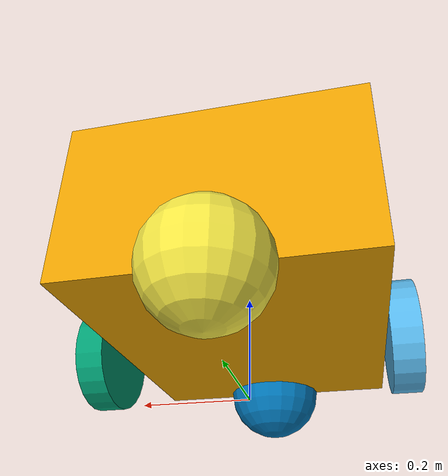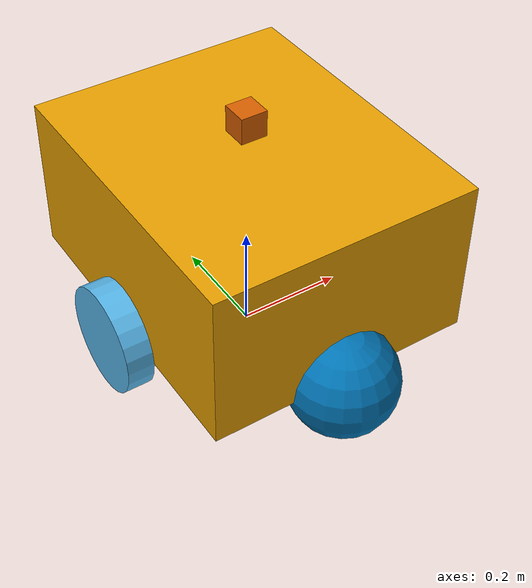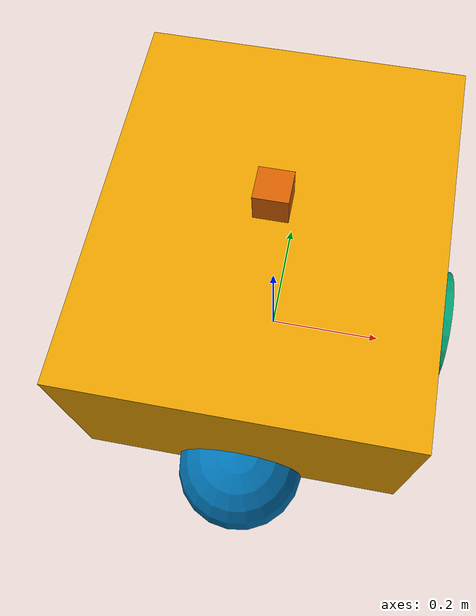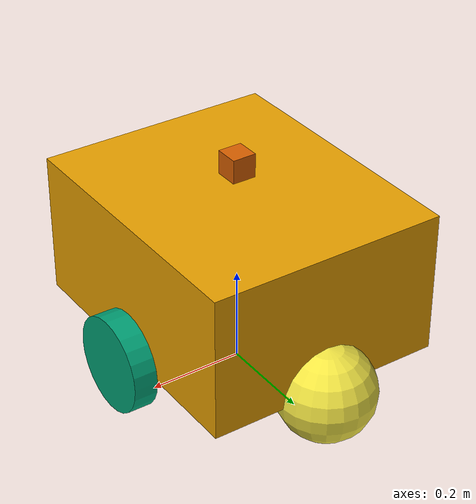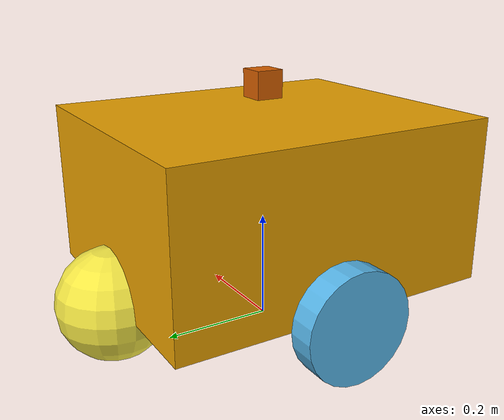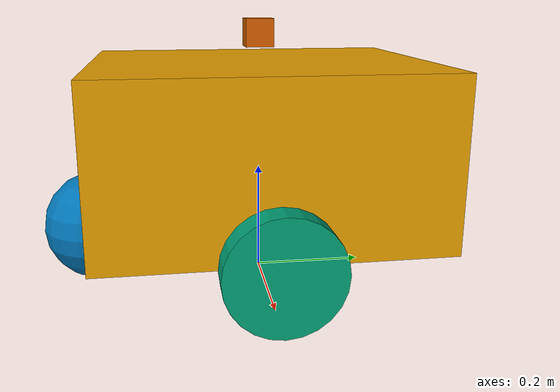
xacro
<?xml version="1.0" encoding="UTF-8"?>
<robot name="my_first_bot">
    <link name="base_link">
        <visual>
            <geometry>
                <box size="0.5 0.6 0.3"/>
            </geometry>
            <origin xyz="0 0 0.25"/>
        </visual>
        <collision>
            <geometry>
                <box size="0.5 0.6 0.3"/>
            </geometry>
            <origin xyz="0 0 0.25"/>
        </collision>
        <inertial>
            <origin xyz="0 0 0.25"/>
            <mass value="20.0"/>
            <inertia ixx="1.0" ixy="0" ixz="0" iyy="1.0" iyz="0" izz="1.0"/>
        </inertial>
    </link>

    <link name = "leftwheel">
        <visual>
            <geometry>
                <cylinder radius="0.1" length="0.05"/>
            </geometry>
            <origin rpy="0 1.5705 0"/>
        </visual>
        <collision>
            <geometry>
                <cylinder radius="0.1" length="0.05"/>
            </geometry>
            <origin rpy="0 1.5705 0"/>
        </collision>
        <inertial>
            <mass value="5"/>
            <inertia ixx="1" ixy="0" ixz="0" iyy="1" iyz="0" izz="1"/>
        </inertial>
    </link>

    <link name = "rightwheel">
        <visual>
            <geometry>
                <cylinder radius="0.1" length="0.05"/>
            </geometry>
            <origin rpy="0 1.5705 0"/>
        </visual>
        <collision>
            <geometry>
                <cylinder radius="0.1" length="0.05"/>
            </geometry>
            <origin rpy="0 1.5705 0"/>
        </collision>
        <inertial>
            <mass value="5"/>
            <inertia ixx="1" ixy="0" ixz="0" iyy="1" iyz="0" izz="1"/>
        </inertial>
    </link>

    <link name = "frontcaster">
        <visual>
            <geometry>
                <sphere radius="0.1"/>
            </geometry>
        </visual>
        <collision>
            <geometry>
                <sphere radius="0.1"/>
            </geometry>
        </collision>
        <inertial>
            <mass value="5"/>
            <inertia ixx="1" ixy="0" ixz="0" iyy="1" iyz="0" izz="1"/>
        </inertial>
    </link>
    <link name = "backcaster">
        <visual>
            <geometry>
                <sphere radius="0.1"/>
            </geometry>
        </visual>
        <collision>
            <geometry>
                <sphere radius="0.1"/>
            </geometry>
        </collision>
        <inertial>
            <mass value="5"/>
            <inertia ixx="1" ixy="0" ixz="0" iyy="1" iyz="0" izz="1"/>
        </inertial>
    </link>

    <gazebo reference = "frontcaster">
        <collision>
          <surface>
            <friction>
              <ode>
                <mu>0</mu>
                <mu2>0</mu2>
              </ode>
            </friction>
          </surface>
        </collision>
      </gazebo>

    <gazebo reference = "backcaster">
    <collision>
        <surface>
        <friction>
            <ode>
            <mu>0</mu>
            <mu2>0</mu2>
            </ode>
        </friction>
        </surface>
    </collision>
    </gazebo>

    <joint name="left_wheel" type="continuous">
        <parent link="base_link"/>
        <child link="leftwheel"/>
        <axis xyz="-1 0 0"/>
        <origin xyz="-0.275 0 0.1"/>
    </joint>
    <joint name="right_wheel" type="continuous">
        <parent link="base_link"/>
        <child link="rightwheel"/>
        <axis xyz="-1 0 0"/>
        <origin xyz="0.275 0 0.1"/>
    </joint>

    <joint name="front_caster" type="fixed">
        <parent link="base_link"/>
        <child link="frontcaster"/>
        <origin xyz="0 0.3 0.1 "/>
    </joint>
    <joint name="back_caster" type="fixed">
        <parent link="base_link"/>
        <child link="backcaster"/>
        <origin xyz="0 -0.3 0.1 "/>
    </joint>

  <gazebo>
    <plugin name="diff_drive" filename="libgazebo_ros_diff_drive.so">
      <left_joint>left_wheel</left_joint>
      <right_joint>right_wheel</right_joint>

      <wheel_separation>0.55</wheel_separation>
      <wheel_diameter>0.2</wheel_diameter>

      <max_wheel_torque>800</max_wheel_torque>
      <max_wheel_acceleration>10.0</max_wheel_acceleration>
      <odometry_frame>odom</odometry_frame>
      <robot_base_frame>base_link</robot_base_frame>
      <publish_odom>true</publish_odom>
      <publish_odom_tf>true</publish_odom_tf>
      <publish_wheel_tf>true</publish_wheel_tf>
    </plugin>
  </gazebo>

  <link name = "lidar_sensor">
    <visual>
      <geometry>
        <box size="0.05 0.05 0.05"/>
      </geometry>
    </visual>

    <inertial>
      <origin xyz="0 0 0"/>
      <mass value="1.0"/>
      <inertia ixx="1.0" ixy="0" ixz="0" iyy="1.0" iyz="0" izz="1.0"/>
    </inertial>
  </link>

  <!-- joint connecting lidar sensor to bot-->
  <joint name = "lidar_to_bot" type="fixed">
    <origin xyz="0 0 0.45"/>
    <parent link="base_link"/>
    <child link="lidar_sensor"/>
  </joint>

  <link name = "base_footprint"></link>

  <joint name = "footprint_joint" type="fixed">
    <parent link="base_link"/>
    <child link="base_footprint"/>
    <origin rpy="0 0 -1.5705"/>

  </joint>

  <gazebo reference="lidar_sensor">

    <sensor name="laser" type="ray">
        <pose> 0 0 0 0 0 0 </pose>
        <visualize>true</visualize>
        <update_rate>30</update_rate>
        <ray>
            <scan>
                <horizontal>
                    <samples>360</samples>
                    <min_angle>-3.14</min_angle>
                    <max_angle>3.14</max_angle>
                </horizontal>
            </scan>
            <range>
                <min>0.1</min>
                <max>12</max>
            </range>
        </ray>
        <plugin name="laser_controller" filename="libgazebo_ros_ray_sensor.so">
            <ros>
                <argument>~/out:=scan</argument>
            </ros>
            <output_type>sensor_msgs/LaserScan</output_type>
            <frame_name>lidar_sensor</frame_name>
        </plugin>
    </sensor>
</gazebo>
</robot>
